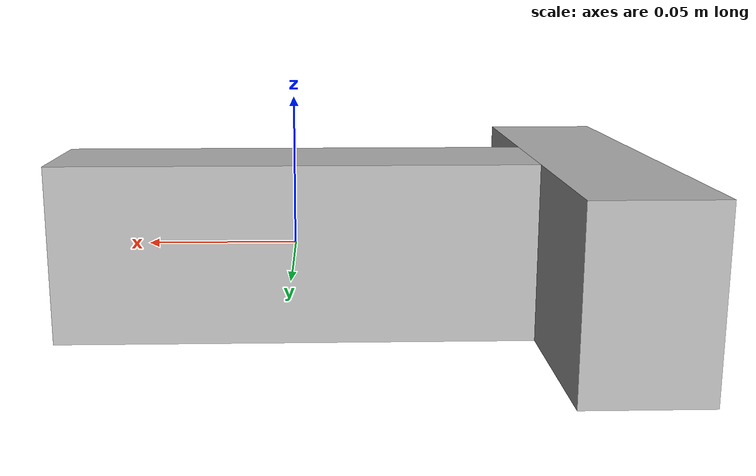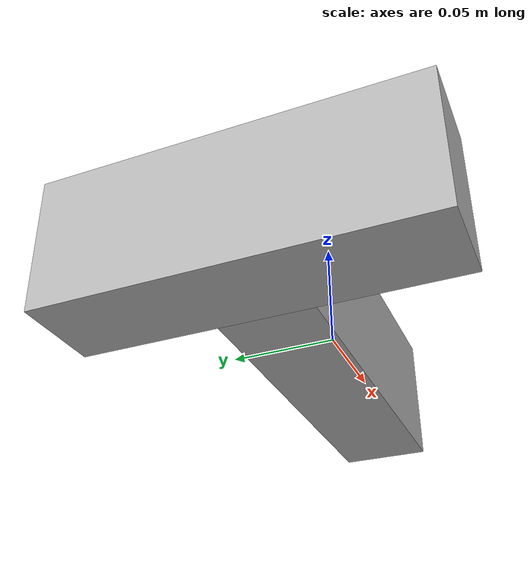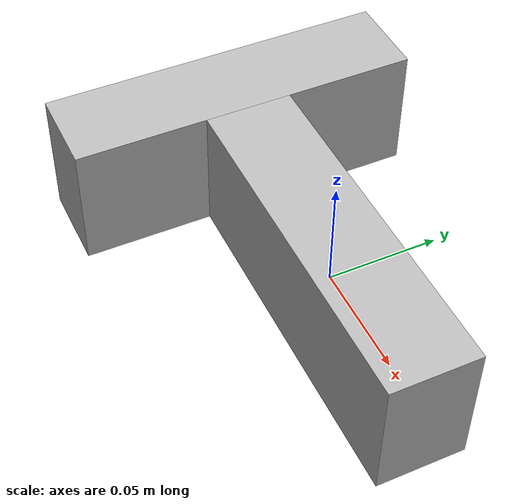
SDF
<?xml version="1.0"?>
<sdf version="1.7">
  <model name="push_t_Tz_control">
    <link name="vertical_link">
      <pose>0.000000 0.000000 0 0 0 0</pose>
      <inertial><mass>0.5</mass>
        <inertia><ixx>0.00021467</ixx><iyy>0.00121467</iyy><izz>0.00113333</izz><ixy>0</ixy><ixz>0</ixz><iyz>0</iyz></inertia></inertial>
      <visual name="vertical_link_visual"><geometry><box><size>0.160000 0.040000 0.059600</size></box></geometry></visual>
      <collision name="vertical_link_collision"><geometry><box><size>0.160000 0.040000 0.059600</size></box></geometry></collision>
      <collision name="c1"><pose>-0.120000 0.080000 -0.029800 0 0 0</pose><geometry><sphere><radius>0.001</radius></sphere></geometry></collision>
      <collision name="c2"><pose>-0.120000 -0.080000 -0.029800 0 0 0</pose><geometry><sphere><radius>0.001</radius></sphere></geometry></collision>
      <collision name="c3"><pose>0.080000 0 -0.029800 0 0 0</pose><geometry><sphere><radius>0.001</radius></sphere></geometry></collision>
    </link>
    <link name="horizontal_link">
      <pose>-0.100000 0.000000 0 0 0 1.5708</pose>
      <inertial><mass>0.5</mass>
        <inertia><ixx>0.00021467</ixx><iyy>0.00121467</iyy><izz>0.00113333</izz><ixy>0</ixy><ixz>0</ixz><iyz>0</iyz></inertia></inertial>
      <visual name="horizontal_link_visual"><geometry><box><size>0.160000 0.040000 0.059600</size></box></geometry></visual>
      <collision name="horizontal_link_collision"><geometry><box><size>0.160000 0.040000 0.059600</size></box></geometry></collision>
    </link>
    <joint name="fixed_joint" type="fixed"><parent>vertical_link</parent><child>horizontal_link</child></joint>
  </model>
</sdf>
